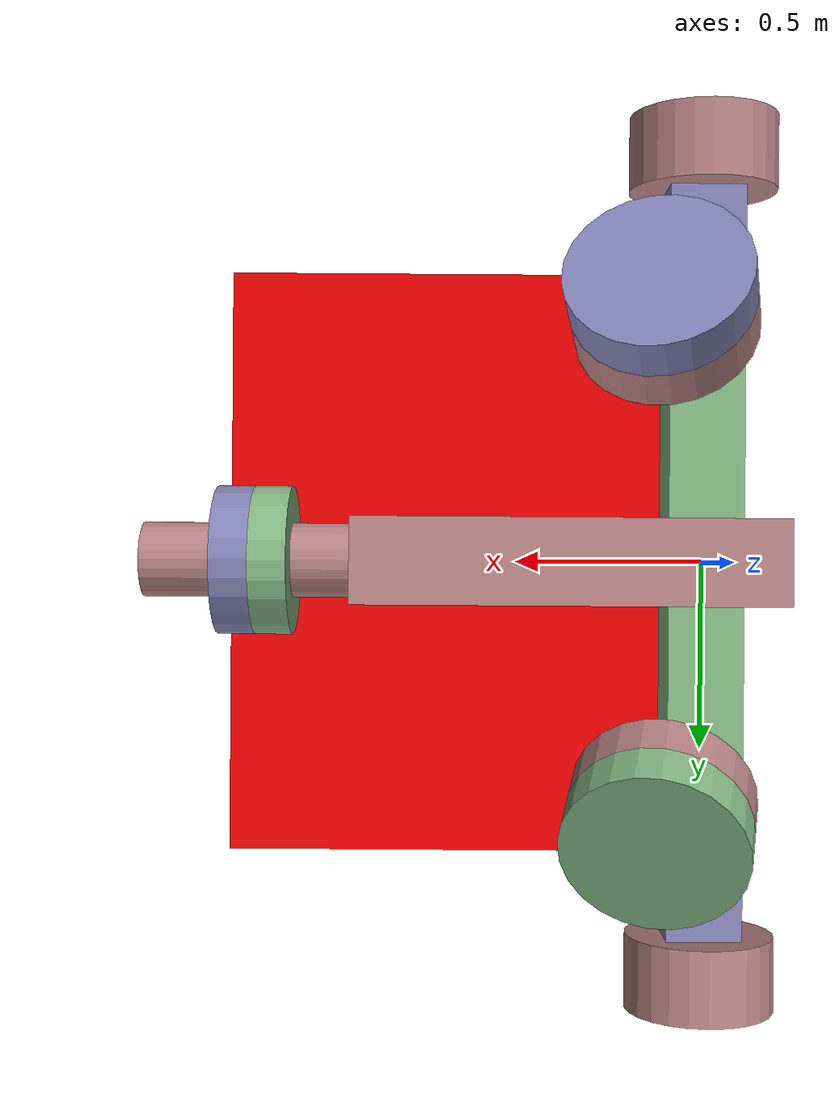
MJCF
<mujoco>
    <option gravity="0 0 -9.81">
        <flag contact="disable"/>
    </option>
    <actuator>
        <position name="j_a" gear="1" joint="j_a" kp="1000000" dampratio="1" ctrlrange="-3.1415 3.1415" />
        <position name="j_b" gear="1" joint="j_b" kp="1000000" dampratio="1" ctrlrange="-3.1415 3.1415" />
    </actuator>
    <asset>
        <material name="col_blue" rgba="0 0 1 1" />
        <material name="col_green" rgba="0 1 0 1" />
        <material name="col_red" rgba="1 0 0 1" />
        <material name="col_white" rgba="1 1 1 1" />
        <material name="col_la" rgba="0.5 0.7 0.5 1" />
        <material name="col_lb" rgba="0.7 0.5 0.5 1" />
        <material name="col_lc" rgba="0.5 0.5 0.7 1" />
    </asset>
    <worldbody>
        <body name="static" pos="0 0 0">
            <geom type="plane" size="10 10 0.1" pos="0 0 -5" rgba=".9 0 0 1" />
            <geom type="box" pos="0 .9 0" euler="0 0 0" size=".1 .1 .1" material="col_lc" />
            <geom type="box" pos="0 -.9 0" euler="0 0 0" size=".1 .1 .1" material="col_lc" />
        </body>

        <body name="l_prim_a" pos="0 0 0" euler="0 0 0">
            <joint name="j_a" type="hinge" pos="0 0 0" axis="0 1 0" />
            <geom type="cylinder" fromto="0 1 0 0 1.2 0" euler="0 0 0" size=".2" material="col_lb" />
            <body name="left_la_sub1" pos="0 0 0" euler="59.25818585 0 -12">
            <geom type="cylinder" fromto="0 1 0 0 1.1 0" size=".2" material="col_lb" />

            <body name="l_sec_a" pos="0 0 0" euler="0 0 0">
                <joint name="j_prim2sec_a" type="hinge" pos="0 0 0" axis="0 1 0" />
                <geom type="cylinder" fromto="0 1.1 0 0 1.2 0" size=".2" material="col_la" />
                <body name="left_lb_sub1" pos="0 0 0" euler="0 0 -78">
                <geom type="cylinder" fromto="0 1.1 0 0 1.2 0" size=".2" material="col_la" />
                </body>
            </body>

            </body>
        </body>

        <body name="l_prim_b" pos="0 0 0" euler="0 0 0">
            <joint name="j_b" type="hinge" pos="0 0 0" axis="0 1 0" />
            <geom type="cylinder" fromto="0 -1 0 0 -1.2 0" euler="0 0 0" size=".2" material="col_lb" />
            <body name="right_la_sub1" pos="0 0 0" euler="-59.25818585 0 12">
            <geom type="cylinder" fromto="0 -1 0 0 -1.1 0" size=".2" material="col_lb" />

            <body name="l_sec_b" pos="0 0 0" euler="0 0 0">
                <joint name="j_prim2sec_b" type="hinge" pos="0 0 0" axis="0 1 0" />
                <geom type="cylinder" fromto="0 -1.1 0 0 -1.2 0" size=".2" material="col_lc" />
                <body name="right_lb_sub1" pos="0 0 0" euler="0 0 78">
                <geom type="cylinder" fromto="0 -1.2 0 0 -1.3 0" size=".2" material="col_lc" />
                </body>
            </body>

            </body>
        </body>

        <body name="l_prim_cross" pos="0 0 0">
            <joint name="j_cross" type="hinge" pos="0 0 0" axis="0 1 0" />
            <geom type="box" pos="0 0 0" euler="0 0 0" size=".1 .8 .1" material="col_la" />
            <geom type="box" pos="0 0 0" euler="0 0 0" size=".1 .1 .5" material="col_la" />

            <body name="l_sec_cross" pos="0 0 0">
                <joint name="j_prim2sec_cross" type="hinge" pos="0 0 0" axis="0 0 1" />
                <geom type="box" pos=".4 0 .6" euler="0 0 0" size=".5 .1 .1" material="col_lb" />
                <geom type="box" pos=".4 0 -.6" euler="0 0 0" size=".5 .1 .1" material="col_lb" />
                <geom type="box" pos=".8 0 0" euler="0 0 0" size=".1 .1 .5" material="col_lb" />
                <geom type="cylinder" fromto="0.9 0 0 1.5 0 0" size=".1" material="col_lb" />
                <body name="l_endeffector" pos="1 0 0" euler="0 0 0">
                    <geom type="sphere" pos="0 0 0" euler="0 0 0" size=".05" material="col_lb" mass="0" />
                </body>
            </body>
        </body>

    </worldbody>
    <equality>
        <connect body1="l_sec_cross" body2="l_sec_a" anchor="1.1 0 0" active="true" />
        <connect body1="l_sec_cross" body2="l_sec_b" anchor="1.1 0 0" active="true" />
    </equality>
</mujoco>
